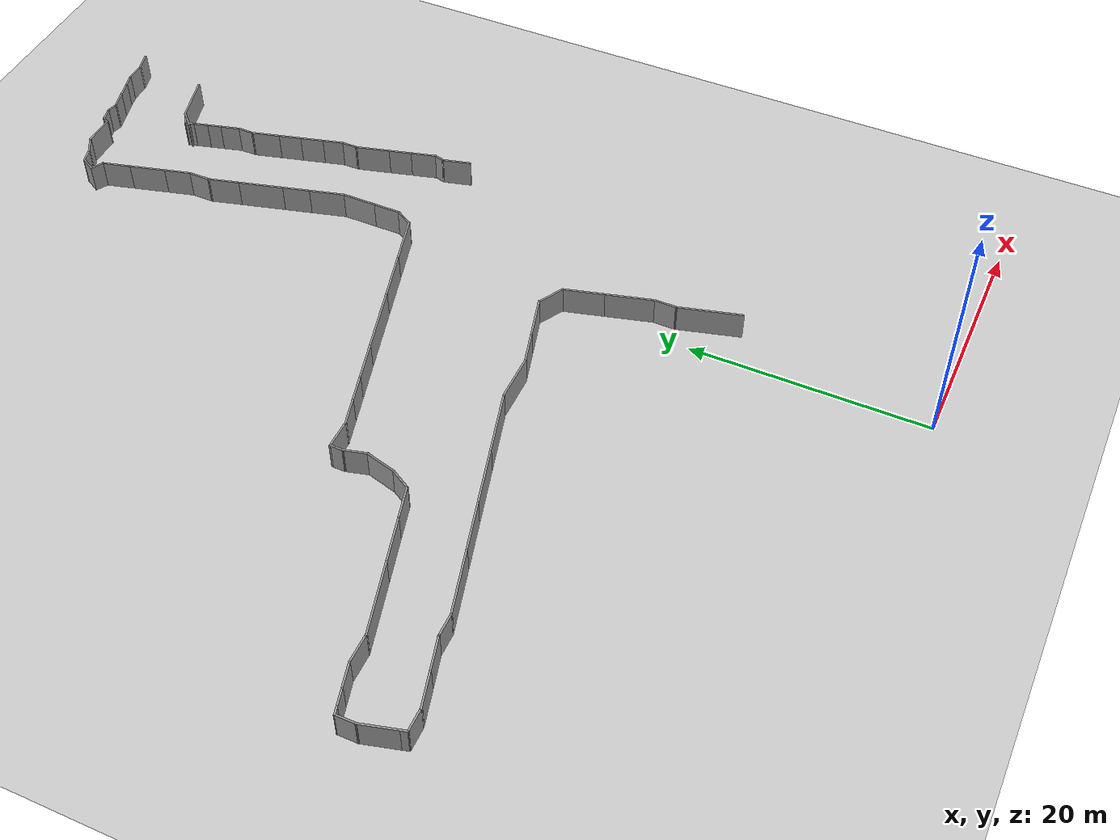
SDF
<sdf version="1.7">
 <world name="default">
  <model name="ground_plane">
   <static>1</static>
   <link name="link">
    <collision name="collision">
     <geometry><plane><normal>0 0 1</normal><size>500 500</size></plane></geometry>
     <surface><friction><ode><mu>100</mu><mu2>50</mu2></ode></friction></surface>
    </collision>
    <visual name="visual">
     <cast_shadows>0</cast_shadows>
     <geometry><plane><normal>0 0 1</normal><size>500 500</size></plane></geometry>
     <material>
      <script><uri>file://media/materials/scripts/gazebo.material</uri><name>Gazebo/Grey</name></script>
     </material>
    </visual>
   </link>
  </model>
  <model name="out_door1">
   <pose>25.5832 12.3476 0 0 -0 0</pose>
   <link name="Wall_201">
    <collision name="Wall_201_Collision">
     <geometry><box><size>1.75 0.15 2.5</size></box></geometry>
     <pose>0 0 1.25 0 -0 0</pose>
    </collision>
    <visual name="Wall_201_Visual">
     <pose>0 0 1.25 0 -0 0</pose>
     <geometry><box><size>1.75 0.15 2.5</size></box></geometry>
     <material>
      <script><uri>file://media/materials/scripts/gazebo.material</uri><name>Gazebo/Grey</name></script>
      <ambient>1 1 1 1</ambient>
     </material>
     <meta><layer>0</layer></meta>
    </visual>
    <pose>-15.1569 65.5333 0 0 -0 -2.87979</pose>
   </link>
   <link name="Wall_202">
    <collision name="Wall_202_Collision">
     <geometry><box><size>1.75 0.15 2.5</size></box></geometry>
     <pose>0 0 1.25 0 -0 0</pose>
    </collision>
    <visual name="Wall_202_Visual">
     <pose>0 0 1.25 0 -0 0</pose>
     <geometry><box><size>1.75 0.15 2.5</size></box></geometry>
     <material>
      <script><uri>file://media/materials/scripts/gazebo.material</uri><name>Gazebo/Grey</name></script>
      <ambient>1 1 1 1</ambient>
     </material>
     <meta><layer>0</layer></meta>
    </visual>
    <pose>-16.7296 65.3262 0 0 -0 3.14159</pose>
   </link>
   <link name="Wall_203">
    <collision name="Wall_203_Collision">
     <geometry><box><size>1.25 0.15 2.5</size></box></geometry>
     <pose>0 0 1.25 0 -0 0</pose>
    </collision>
    <visual name="Wall_203_Visual">
     <pose>0 0 1.25 0 -0 0</pose>
     <geometry><box><size>1.25 0.15 2.5</size></box></geometry>
     <material>
      <script><uri>file://media/materials/scripts/gazebo.material</uri><name>Gazebo/Grey</name></script>
      <ambient>1 1 1 1</ambient>
     </material>
     <meta><layer>0</layer></meta>
    </visual>
    <pose>-18.0609 65.1839 0 0 -0 -2.87979</pose>
   </link>
   <link name="Wall_204">
    <collision name="Wall_204_Collision">
     <geometry><box><size>1.5 0.15 2.5</size></box></geometry>
     <pose>0 0 1.25 0 -0 0</pose>
    </collision>
    <visual name="Wall_204_Visual">
     <pose>0 0 1.25 0 -0 0</pose>
     <geometry><box><size>1.5 0.15 2.5</size></box></geometry>
     <material>
      <script><uri>file://media/materials/scripts/gazebo.material</uri><name>Gazebo/Grey</name></script>
      <ambient>1 1 1 1</ambient>
     </material>
     <meta><layer>0</layer></meta>
    </visual>
    <pose>-19.2441 64.8668 0 0 -0 -2.87979</pose>
   </link>
   <link name="Wall_205">
    <collision name="Wall_205_Collision">
     <geometry><box><size>1.75 0.15 2.5</size></box></geometry>
     <pose>0 0 1.25 0 -0 0</pose>
    </collision>
    <visual name="Wall_205_Visual">
     <pose>0 0 1.25 0 -0 0</pose>
     <geometry><box><size>1.75 0.15 2.5</size></box></geometry>
     <material>
      <script><uri>file://media/materials/scripts/gazebo.material</uri><name>Gazebo/Grey</name></script>
      <ambient>1 1 1 1</ambient>
     </material>
     <meta><layer>0</layer></meta>
    </visual>
    <pose>-20.6689 64.4851 0 0 -0 -2.87979</pose>
   </link>
   <link name="Wall_206">
    <collision name="Wall_206_Collision">
     <geometry><box><size>1 0.15 2.5</size></box></geometry>
     <pose>0 0 1.25 0 -0 0</pose>
    </collision>
    <visual name="Wall_206_Visual">
     <pose>0 0 1.25 0 -0 0</pose>
     <geometry><box><size>1 0.15 2.5</size></box></geometry>
     <material>
      <script><uri>file://media/materials/scripts/gazebo.material</uri><name>Gazebo/Grey</name></script>
      <ambient>1 1 1 1</ambient>
     </material>
     <meta><layer>0</layer></meta>
    </visual>
    <pose>-21.8521 64.388 0 0 -0 2.87979</pose>
   </link>
   <link name="Wall_207">
    <collision name="Wall_207_Collision">
     <geometry><box><size>1.25 0.15 2.5</size></box></geometry>
     <pose>0 0 1.25 0 -0 0</pose>
    </collision>
    <visual name="Wall_207_Visual">
     <pose>0 0 1.25 0 -0 0</pose>
     <geometry><box><size>1.25 0.15 2.5</size></box></geometry>
     <material>
      <script><uri>file://media/materials/scripts/gazebo.material</uri><name>Gazebo/Grey</name></script>
      <ambient>1 1 1 1</ambient>
     </material>
     <meta><layer>0</layer></meta>
    </visual>
    <pose>-22.7939 64.3556 0 0 -0 -2.87979</pose>
   </link>
   <link name="Wall_208">
    <collision name="Wall_208_Collision">
     <geometry><box><size>0.75 0.15 2.5</size></box></geometry>
     <pose>0 0 1.25 0 -0 0</pose>
    </collision>
    <visual name="Wall_208_Visual">
     <pose>0 0 1.25 0 -0 0</pose>
     <geometry><box><size>0.75 0.15 2.5</size></box></geometry>
     <material>
      <script><uri>file://media/materials/scripts/gazebo.material</uri><name>Gazebo/Grey</name></script>
      <ambient>1 1 1 1</ambient>
     </material>
     <meta><layer>0</layer></meta>
    </visual>
    <pose>-23.4752 63.9535 0 0 -0 -2.0944</pose>
   </link>
   <link name="Wall_209">
    <collision name="Wall_209_Collision">
     <geometry><box><size>2.75 0.15 2.5</size></box></geometry>
     <pose>0 0 1.25 0 -0 0</pose>
    </collision>
    <visual name="Wall_209_Visual">
     <pose>0 0 1.25 0 -0 0</pose>
     <geometry><box><size>2.75 0.15 2.5</size></box></geometry>
     <material>
      <script><uri>file://media/materials/scripts/gazebo.material</uri><name>Gazebo/Grey</name></script>
      <ambient>1 1 1 1</ambient>
     </material>
     <meta><layer>0</layer></meta>
    </visual>
    <pose>-24.9252 63.6937 0 0 -0 3.14159</pose>
   </link>
   <link name="Wall_210">
    <collision name="Wall_210_Collision">
     <geometry><box><size>1.75 0.15 2.5</size></box></geometry>
     <pose>0 0 1.25 0 -0 0</pose>
    </collision>
    <visual name="Wall_210_Visual">
     <pose>0 0 1.25 0 -0 0</pose>
     <geometry><box><size>1.75 0.15 2.5</size></box></geometry>
     <material>
      <script><uri>file://media/materials/scripts/gazebo.material</uri><name>Gazebo/Grey</name></script>
      <ambient>1 1 1 1</ambient>
     </material>
     <meta><layer>0</layer></meta>
    </visual>
    <pose>-26.918 63.2937 0 0 -0 -2.61799</pose>
   </link>
   <link name="Wall_211">
    <collision name="Wall_211_Collision">
     <geometry><box><size>1.25 0.15 2.5</size></box></geometry>
     <pose>0 0 1.25 0 -0 0</pose>
    </collision>
    <visual name="Wall_211_Visual">
     <pose>0 0 1.25 0 -0 0</pose>
     <geometry><box><size>1.25 0.15 2.5</size></box></geometry>
     <material>
      <script><uri>file://media/materials/scripts/gazebo.material</uri><name>Gazebo/Grey</name></script>
      <ambient>1 1 1 1</ambient>
     </material>
     <meta><layer>0</layer></meta>
    </visual>
    <pose>-28.1421 62.7513 0 0 -0 -2.87979</pose>
   </link>
   <link name="Wall_212">
    <collision name="Wall_212_Collision">
     <geometry><box><size>1.5 0.15 2.5</size></box></geometry>
     <pose>0 0 1.25 0 -0 0</pose>
    </collision>
    <visual name="Wall_212_Visual">
     <pose>0 0 1.25 0 -0 0</pose>
     <geometry><box><size>1.5 0.15 2.5</size></box></geometry>
     <material>
      <script><uri>file://media/materials/scripts/gazebo.material</uri><name>Gazebo/Grey</name></script>
      <ambient>1 1 1 1</ambient>
     </material>
     <meta><layer>0</layer></meta>
    </visual>
    <pose>-29.0108 62.0244 0 0 -0 -2.0944</pose>
   </link>
   <link name="Wall_213">
    <collision name="Wall_213_Collision">
     <geometry><box><size>1.25 0.15 2.5</size></box></geometry>
     <pose>0 0 1.25 0 -0 0</pose>
    </collision>
    <visual name="Wall_213_Visual">
     <pose>0 0 1.25 0 -0 0</pose>
     <geometry><box><size>1.25 0.15 2.5</size></box></geometry>
     <material>
      <script><uri>file://media/materials/scripts/gazebo.material</uri><name>Gazebo/Grey</name></script>
      <ambient>1 1 1 1</ambient>
     </material>
     <meta><layer>0</layer></meta>
    </visual>
    <pose>-28.872 61.1648 0 0 -0 -0.523599</pose>
   </link>
   <link name="Wall_215">
    <collision name="Wall_215_Collision">
     <geometry><box><size>2.5 0.15 2.5</size></box></geometry>
     <pose>0 0 1.25 0 -0 0</pose>
    </collision>
    <visual name="Wall_215_Visual">
     <pose>0 0 1.25 0 -0 0</pose>
     <geometry><box><size>2.5 0.15 2.5</size></box></geometry>
     <material>
      <script><uri>file://media/materials/scripts/gazebo.material</uri><name>Gazebo/Grey</name></script>
      <ambient>1 1 1 1</ambient>
     </material>
     <meta><layer>0</layer></meta>
    </visual>
    <pose>-28.0916 59.7549 0 0 -0 -1.309</pose>
   </link>
   <link name="Wall_216">
    <collision name="Wall_216_Collision">
     <geometry><box><size>3.25 0.15 2.5</size></box></geometry>
     <pose>0 0 1.25 0 -0 0</pose>
    </collision>
    <visual name="Wall_216_Visual">
     <pose>0 0 1.25 0 -0 0</pose>
     <geometry><box><size>3.25 0.15 2.5</size></box></geometry>
     <material>
      <script><uri>file://media/materials/scripts/gazebo.material</uri><name>Gazebo/Grey</name></script>
      <ambient>1 1 1 1</ambient>
     </material>
     <meta><layer>0</layer></meta>
    </visual>
    <pose>-27.3863 57.1227 0 0 -0 -1.309</pose>
   </link>
   <link name="Wall_217">
    <collision name="Wall_217_Collision">
     <geometry><box><size>2.5 0.15 2.5</size></box></geometry>
     <pose>0 0 1.25 0 -0 0</pose>
    </collision>
    <visual name="Wall_217_Visual">
     <pose>0 0 1.25 0 -0 0</pose>
     <geometry><box><size>2.5 0.15 2.5</size></box></geometry>
     <material>
      <script><uri>file://media/materials/scripts/gazebo.material</uri><name>Gazebo/Grey</name></script>
      <ambient>1 1 1 1</ambient>
     </material>
     <meta><layer>0</layer></meta>
    </visual>
    <pose>-26.681 54.4906 0 0 -0 -1.309</pose>
   </link>
   <link name="Wall_218">
    <collision name="Wall_218_Collision">
     <geometry><box><size>2 0.15 2.5</size></box></geometry>
     <pose>0 0 1.25 0 -0 0</pose>
    </collision>
    <visual name="Wall_218_Visual">
     <pose>0 0 1.25 0 -0 0</pose>
     <geometry><box><size>2 0.15 2.5</size></box></geometry>
     <material>
      <script><uri>file://media/materials/scripts/gazebo.material</uri><name>Gazebo/Grey</name></script>
      <ambient>1 1 1 1</ambient>
     </material>
     <meta><layer>0</layer></meta>
    </visual>
    <pose>-26.3769 52.4306 0 0 -0 -1.5708</pose>
   </link>
   <link name="Wall_219">
    <collision name="Wall_219_Collision">
     <geometry><box><size>2.75 0.15 2.5</size></box></geometry>
     <pose>0 0 1.25 0 -0 0</pose>
    </collision>
    <visual name="Wall_219_Visual">
     <pose>0 0 1.25 0 -0 0</pose>
     <geometry><box><size>2.75 0.15 2.5</size></box></geometry>
     <material>
      <script><uri>file://media/materials/scripts/gazebo.material</uri><name>Gazebo/Grey</name></script>
      <ambient>1 1 1 1</ambient>
     </material>
     <meta><layer>0</layer></meta>
    </visual>
    <pose>-26.0405 50.2499 0 0 -0 -1.309</pose>
   </link>
   <link name="Wall_220">
    <collision name="Wall_220_Collision">
     <geometry><box><size>4 0.15 2.5</size></box></geometry>
     <pose>0 0 1.25 0 -0 0</pose>
    </collision>
    <visual name="Wall_220_Visual">
     <pose>0 0 1.25 0 -0 0</pose>
     <geometry><box><size>4 0.15 2.5</size></box></geometry>
     <material>
      <script><uri>file://media/materials/scripts/gazebo.material</uri><name>Gazebo/Grey</name></script>
      <ambient>1 1 1 1</ambient>
     </material>
     <meta><layer>0</layer></meta>
    </visual>
    <pose>-25.2058 47.1348 0 0 -0 -1.309</pose>
   </link>
   <link name="Wall_222">
    <collision name="Wall_222_Collision">
     <geometry><box><size>2.5 0.15 2.5</size></box></geometry>
     <pose>0 0 1.25 0 -0 0</pose>
    </collision>
    <visual name="Wall_222_Visual">
     <pose>0 0 1.25 0 -0 0</pose>
     <geometry><box><size>2.5 0.15 2.5</size></box></geometry>
     <material>
      <script><uri>file://media/materials/scripts/gazebo.material</uri><name>Gazebo/Grey</name></script>
      <ambient>1 1 1 1</ambient>
     </material>
     <meta><layer>0</layer></meta>
    </visual>
    <pose>-24.4034 44.1404 0 0 -0 -1.309</pose>
   </link>
   <link name="Wall_223">
    <collision name="Wall_223_Collision">
     <geometry><box><size>3.25 0.15 2.5</size></box></geometry>
     <pose>0 0 1.25 0 -0 0</pose>
    </collision>
    <visual name="Wall_223_Visual">
     <pose>0 0 1.25 0 -0 0</pose>
     <geometry><box><size>3.25 0.15 2.5</size></box></geometry>
     <material>
      <script><uri>file://media/materials/scripts/gazebo.material</uri><name>Gazebo/Grey</name></script>
      <ambient>1 1 1 1</ambient>
     </material>
     <meta><layer>0</layer></meta>
    </visual>
    <pose>-23.6981 41.5083 0 0 -0 -1.309</pose>
   </link>
   <link name="Wall_224">
    <collision name="Wall_224_Collision">
     <geometry><box><size>3 0.15 2.5</size></box></geometry>
     <pose>0 0 1.25 0 -0 0</pose>
    </collision>
    <visual name="Wall_224_Visual">
     <pose>0 0 1.25 0 -0 0</pose>
     <geometry><box><size>3 0.15 2.5</size></box></geometry>
     <material>
      <script><uri>file://media/materials/scripts/gazebo.material</uri><name>Gazebo/Grey</name></script>
      <ambient>1 1 1 1</ambient>
     </material>
     <meta><layer>0</layer></meta>
    </visual>
    <pose>-23.297 38.5861 0 0 -0 -1.5708</pose>
   </link>
   <link name="Wall_225">
    <collision name="Wall_225_Collision">
     <geometry><box><size>2.5 0.15 2.5</size></box></geometry>
     <pose>0 0 1.25 0 -0 0</pose>
    </collision>
    <visual name="Wall_225_Visual">
     <pose>0 0 1.25 0 -0 0</pose>
     <geometry><box><size>2.5 0.15 2.5</size></box></geometry>
     <material>
      <script><uri>file://media/materials/scripts/gazebo.material</uri><name>Gazebo/Grey</name></script>
      <ambient>1 1 1 1</ambient>
     </material>
     <meta><layer>0</layer></meta>
    </visual>
    <pose>-23.297 35.9861 0 0 -0 -1.5708</pose>
   </link>
   <link name="Wall_226">
    <collision name="Wall_226_Collision">
     <geometry><box><size>1.75 0.15 2.5</size></box></geometry>
     <pose>0 0 1.25 0 -0 0</pose>
    </collision>
    <visual name="Wall_226_Visual">
     <pose>0 0 1.25 0 -0 0</pose>
     <geometry><box><size>1.75 0.15 2.5</size></box></geometry>
     <material>
      <script><uri>file://media/materials/scripts/gazebo.material</uri><name>Gazebo/Grey</name></script>
      <ambient>1 1 1 1</ambient>
     </material>
     <meta><layer>0</layer></meta>
    </visual>
    <pose>-23.697 34.1183 0 0 -0 -2.0944</pose>
   </link>
   <link name="Wall_227">
    <collision name="Wall_227_Collision">
     <geometry><box><size>4.25 0.15 2.5</size></box></geometry>
     <pose>0 0 1.25 0 -0 0</pose>
    </collision>
    <visual name="Wall_227_Visual">
     <pose>0 0 1.25 0 -0 0</pose>
     <geometry><box><size>4.25 0.15 2.5</size></box></geometry>
     <material>
      <script><uri>file://media/materials/scripts/gazebo.material</uri><name>Gazebo/Grey</name></script>
      <ambient>1 1 1 1</ambient>
     </material>
     <meta><layer>0</layer></meta>
    </visual>
    <pose>-26.0771 32.8949 0 0 -0 -2.87979</pose>
   </link>
   <link name="Wall_228">
    <collision name="Wall_228_Collision">
     <geometry><box><size>4.5 0.15 2.5</size></box></geometry>
     <pose>0 0 1.25 0 -0 0</pose>
    </collision>
    <visual name="Wall_228_Visual">
     <pose>0 0 1.25 0 -0 0</pose>
     <geometry><box><size>4.5 0.15 2.5</size></box></geometry>
     <material>
      <script><uri>file://media/materials/scripts/gazebo.material</uri><name>Gazebo/Grey</name></script>
      <ambient>1 1 1 1</ambient>
     </material>
     <meta><layer>0</layer></meta>
    </visual>
    <pose>-30.1582 31.8014 0 0 -0 -2.87979</pose>
   </link>
   <link name="Wall_229">
    <collision name="Wall_229_Collision">
     <geometry><box><size>5.75 0.15 2.5</size></box></geometry>
     <pose>0 0 1.25 0 -0 0</pose>
    </collision>
    <visual name="Wall_229_Visual">
     <pose>0 0 1.25 0 -0 0</pose>
     <geometry><box><size>5.75 0.15 2.5</size></box></geometry>
     <material>
      <script><uri>file://media/materials/scripts/gazebo.material</uri><name>Gazebo/Grey</name></script>
      <ambient>1 1 1 1</ambient>
     </material>
     <meta><layer>0</layer></meta>
    </visual>
    <pose>-34.9636 30.5137 0 0 -0 -2.87979</pose>
   </link>
   <link name="Wall_230">
    <collision name="Wall_230_Collision">
     <geometry><box><size>3.5 0.15 2.5</size></box></geometry>
     <pose>0 0 1.25 0 -0 0</pose>
    </collision>
    <visual name="Wall_230_Visual">
     <pose>0 0 1.25 0 -0 0</pose>
     <geometry><box><size>3.5 0.15 2.5</size></box></geometry>
     <material>
      <script><uri>file://media/materials/scripts/gazebo.material</uri><name>Gazebo/Grey</name></script>
      <ambient>1 1 1 1</ambient>
     </material>
     <meta><layer>0</layer></meta>
    </visual>
    <pose>-39.2862 29.3555 0 0 -0 -2.87979</pose>
   </link>
   <link name="Wall_231">
    <collision name="Wall_231_Collision">
     <geometry><box><size>2.5 0.15 2.5</size></box></geometry>
     <pose>0 0 1.25 0 -0 0</pose>
    </collision>
    <visual name="Wall_231_Visual">
     <pose>0 0 1.25 0 -0 0</pose>
     <geometry><box><size>2.5 0.15 2.5</size></box></geometry>
     <material>
      <script><uri>file://media/materials/scripts/gazebo.material</uri><name>Gazebo/Grey</name></script>
      <ambient>1 1 1 1</ambient>
     </material>
     <meta><layer>0</layer></meta>
    </visual>
    <pose>-42.039 28.6179 0 0 -0 -2.87979</pose>
   </link>
   <link name="Wall_232">
    <collision name="Wall_232_Collision">
     <geometry><box><size>2.5 0.15 2.5</size></box></geometry>
     <pose>0 0 1.25 0 -0 0</pose>
    </collision>
    <visual name="Wall_232_Visual">
     <pose>0 0 1.25 0 -0 0</pose>
     <geometry><box><size>2.5 0.15 2.5</size></box></geometry>
     <material>
      <script><uri>file://media/materials/scripts/gazebo.material</uri><name>Gazebo/Grey</name></script>
      <ambient>1 1 1 1</ambient>
     </material>
     <meta><layer>0</layer></meta>
    </visual>
    <pose>-44.309 28.0097 0 0 -0 -2.87979</pose>
   </link>
   <link name="Wall_233">
    <collision name="Wall_233_Collision">
     <geometry><box><size>2.5 0.15 2.5</size></box></geometry>
     <pose>0 0 1.25 0 -0 0</pose>
    </collision>
    <visual name="Wall_233_Visual">
     <pose>0 0 1.25 0 -0 0</pose>
     <geometry><box><size>2.5 0.15 2.5</size></box></geometry>
     <material>
      <script><uri>file://media/materials/scripts/gazebo.material</uri><name>Gazebo/Grey</name></script>
      <ambient>1 1 1 1</ambient>
     </material>
     <meta><layer>0</layer></meta>
    </visual>
    <pose>-46.6189 27.7056 0 0 -0 3.14159</pose>
   </link>
   <link name="Wall_234">
    <collision name="Wall_234_Collision">
     <geometry><box><size>1.25 0.15 2.5</size></box></geometry>
     <pose>0 0 1.25 0 -0 0</pose>
    </collision>
    <visual name="Wall_234_Visual">
     <pose>0 0 1.25 0 -0 0</pose>
     <geometry><box><size>1.25 0.15 2.5</size></box></geometry>
     <material>
      <script><uri>file://media/materials/scripts/gazebo.material</uri><name>Gazebo/Grey</name></script>
      <ambient>1 1 1 1</ambient>
     </material>
     <meta><layer>0</layer></meta>
    </visual>
    <pose>-47.7939 27.1556 0 0 -0 -1.5708</pose>
   </link>
   <link name="Wall_237">
    <collision name="Wall_237_Collision">
     <geometry><box><size>2 0.15 2.5</size></box></geometry>
     <pose>0 0 1.25 0 -0 0</pose>
    </collision>
    <visual name="Wall_237_Visual">
     <pose>0 0 1.25 0 -0 0</pose>
     <geometry><box><size>2 0.15 2.5</size></box></geometry>
     <material>
      <script><uri>file://media/materials/scripts/gazebo.material</uri><name>Gazebo/Grey</name></script>
      <ambient>1 1 1 1</ambient>
     </material>
     <meta><layer>0</layer></meta>
    </visual>
    <pose>-47.5545 25.7121 0 0 -0 -1.309</pose>
   </link>
   <link name="Wall_238">
    <collision name="Wall_238_Collision">
     <geometry><box><size>2.75 0.15 2.5</size></box></geometry>
     <pose>0 0 1.25 0 -0 0</pose>
    </collision>
    <visual name="Wall_238_Visual">
     <pose>0 0 1.25 0 -0 0</pose>
     <geometry><box><size>2.75 0.15 2.5</size></box></geometry>
     <material>
      <script><uri>file://media/materials/scripts/gazebo.material</uri><name>Gazebo/Grey</name></script>
      <ambient>1 1 1 1</ambient>
     </material>
     <meta><layer>0</layer></meta>
    </visual>
    <pose>-47.6516 23.5629 0 0 -0 -1.8326</pose>
   </link>
   <link name="Wall_239">
    <collision name="Wall_239_Collision">
     <geometry><box><size>2 0.15 2.5</size></box></geometry>
     <pose>0 0 1.25 0 -0 0</pose>
    </collision>
    <visual name="Wall_239_Visual">
     <pose>0 0 1.25 0 -0 0</pose>
     <geometry><box><size>2 0.15 2.5</size></box></geometry>
     <material>
      <script><uri>file://media/materials/scripts/gazebo.material</uri><name>Gazebo/Grey</name></script>
      <ambient>1 1 1 1</ambient>
     </material>
     <meta><layer>0</layer></meta>
    </visual>
    <pose>-48.4505 21.5061 0 0 -0 -2.0944</pose>
   </link>
   <link name="Wall_240">
    <collision name="Wall_240_Collision">
     <geometry><box><size>3 0.15 2.5</size></box></geometry>
     <pose>0 0 1.25 0 -0 0</pose>
    </collision>
    <visual name="Wall_240_Visual">
     <pose>0 0 1.25 0 -0 0</pose>
     <geometry><box><size>3 0.15 2.5</size></box></geometry>
     <material>
      <script><uri>file://media/materials/scripts/gazebo.material</uri><name>Gazebo/Grey</name></script>
      <ambient>1 1 1 1</ambient>
     </material>
     <meta><layer>0</layer></meta>
    </visual>
    <pose>-50.2895 20.3362 0 0 -0 -2.87979</pose>
   </link>
   <link name="Wall_241">
    <collision name="Wall_241_Collision">
     <geometry><box><size>4 0.15 2.5</size></box></geometry>
     <pose>0 0 1.25 0 -0 0</pose>
    </collision>
    <visual name="Wall_241_Visual">
     <pose>0 0 1.25 0 -0 0</pose>
     <geometry><box><size>4 0.15 2.5</size></box></geometry>
     <material>
      <script><uri>file://media/materials/scripts/gazebo.material</uri><name>Gazebo/Grey</name></script>
      <ambient>1 1 1 1</ambient>
     </material>
     <meta><layer>0</layer></meta>
    </visual>
    <pose>-53.5253 19.4692 0 0 -0 -2.87979</pose>
   </link>
   <link name="Wall_242">
    <collision name="Wall_242_Collision">
     <geometry><box><size>6.25 0.15 2.5</size></box></geometry>
     <pose>0 0 1.25 0 -0 0</pose>
    </collision>
    <visual name="Wall_242_Visual">
     <pose>0 0 1.25 0 -0 0</pose>
     <geometry><box><size>6.25 0.15 2.5</size></box></geometry>
     <material>
      <script><uri>file://media/materials/scripts/gazebo.material</uri><name>Gazebo/Grey</name></script>
      <ambient>1 1 1 1</ambient>
     </material>
     <meta><layer>0</layer></meta>
    </visual>
    <pose>-58.3308 18.1816 0 0 -0 -2.87979</pose>
   </link>
   <link name="Wall_243">
    <collision name="Wall_243_Collision">
     <geometry><box><size>2.5 0.15 2.5</size></box></geometry>
     <pose>0 0 1.25 0 -0 0</pose>
    </collision>
    <visual name="Wall_243_Visual">
     <pose>0 0 1.25 0 -0 0</pose>
     <geometry><box><size>2.5 0.15 2.5</size></box></geometry>
     <material>
      <script><uri>file://media/materials/scripts/gazebo.material</uri><name>Gazebo/Grey</name></script>
      <ambient>1 1 1 1</ambient>
     </material>
     <meta><layer>0</layer></meta>
    </visual>
    <pose>-62.4519 17.3922 0 0 -0 3.14159</pose>
   </link>
   <link name="Wall_244">
    <collision name="Wall_244_Collision">
     <geometry><box><size>2.25 0.15 2.5</size></box></geometry>
     <pose>0 0 1.25 0 -0 0</pose>
    </collision>
    <visual name="Wall_244_Visual">
     <pose>0 0 1.25 0 -0 0</pose>
     <geometry><box><size>2.25 0.15 2.5</size></box></geometry>
     <material>
      <script><uri>file://media/materials/scripts/gazebo.material</uri><name>Gazebo/Grey</name></script>
      <ambient>1 1 1 1</ambient>
     </material>
     <meta><layer>0</layer></meta>
    </visual>
    <pose>-64.6411 17.1204 0 0 -0 -2.87979</pose>
   </link>
   <link name="Wall_245">
    <collision name="Wall_245_Collision">
     <geometry><box><size>1.5 0.15 2.5</size></box></geometry>
     <pose>0 0 1.25 0 -0 0</pose>
    </collision>
    <visual name="Wall_245_Visual">
     <pose>0 0 1.25 0 -0 0</pose>
     <geometry><box><size>1.5 0.15 2.5</size></box></geometry>
     <material>
      <script><uri>file://media/materials/scripts/gazebo.material</uri><name>Gazebo/Grey</name></script>
      <ambient>1 1 1 1</ambient>
     </material>
     <meta><layer>0</layer></meta>
    </visual>
    <pose>-66.3073 16.6739 0 0 -0 -2.87979</pose>
   </link>
   <link name="Wall_246">
    <collision name="Wall_246_Collision">
     <geometry><box><size>0.75 0.15 2.5</size></box></geometry>
     <pose>0 0 1.25 0 -0 0</pose>
    </collision>
    <visual name="Wall_246_Visual">
     <pose>0 0 1.25 0 -0 0</pose>
     <geometry><box><size>0.75 0.15 2.5</size></box></geometry>
     <material>
      <script><uri>file://media/materials/scripts/gazebo.material</uri><name>Gazebo/Grey</name></script>
      <ambient>1 1 1 1</ambient>
     </material>
     <meta><layer>0</layer></meta>
    </visual>
    <pose>-67.2491 16.4216 0 0 -0 -2.87979</pose>
   </link>
   <link name="Wall_247">
    <collision name="Wall_247_Collision">
     <geometry><box><size>1.75 0.15 2.5</size></box></geometry>
     <pose>0 0 1.25 0 -0 0</pose>
    </collision>
    <visual name="Wall_247_Visual">
     <pose>0 0 1.25 0 -0 0</pose>
     <geometry><box><size>1.75 0.15 2.5</size></box></geometry>
     <material>
      <script><uri>file://media/materials/scripts/gazebo.material</uri><name>Gazebo/Grey</name></script>
      <ambient>1 1 1 1</ambient>
     </material>
     <meta><layer>0</layer></meta>
    </visual>
    <pose>-67.5389 15.5439 0 0 -0 -1.5708</pose>
   </link>
   <link name="Wall_248">
    <collision name="Wall_248_Collision">
     <geometry><box><size>3 0.15 2.5</size></box></geometry>
     <pose>0 0 1.25 0 -0 0</pose>
    </collision>
    <visual name="Wall_248_Visual">
     <pose>0 0 1.25 0 -0 0</pose>
     <geometry><box><size>3 0.15 2.5</size></box></geometry>
     <material>
      <script><uri>file://media/materials/scripts/gazebo.material</uri><name>Gazebo/Grey</name></script>
      <ambient>1 1 1 1</ambient>
     </material>
     <meta><layer>0</layer></meta>
    </visual>
    <pose>-67.1701 13.3675 0 0 -0 -1.309</pose>
   </link>
   <link name="Wall_249">
    <collision name="Wall_249_Collision">
     <geometry><box><size>0.75 0.15 2.5</size></box></geometry>
     <pose>0 0 1.25 0 -0 0</pose>
    </collision>
    <visual name="Wall_249_Visual">
     <pose>0 0 1.25 0 -0 0</pose>
     <geometry><box><size>0.75 0.15 2.5</size></box></geometry>
     <material>
      <script><uri>file://media/materials/scripts/gazebo.material</uri><name>Gazebo/Grey</name></script>
      <ambient>1 1 1 1</ambient>
     </material>
     <meta><layer>0</layer></meta>
    </visual>
    <pose>-66.7236 11.7013 0 0 -0 -1.309</pose>
   </link>
   <link name="Wall_250">
    <collision name="Wall_250_Collision">
     <geometry><box><size>2 0.15 2.5</size></box></geometry>
     <pose>0 0 1.25 0 -0 0</pose>
    </collision>
    <visual name="Wall_250_Visual">
     <pose>0 0 1.25 0 -0 0</pose>
     <geometry><box><size>2 0.15 2.5</size></box></geometry>
     <material>
      <script><uri>file://media/materials/scripts/gazebo.material</uri><name>Gazebo/Grey</name></script>
      <ambient>1 1 1 1</ambient>
     </material>
     <meta><layer>0</layer></meta>
    </visual>
    <pose>-65.721 11.4115 0 0 -0 0</pose>
   </link>
   <link name="Wall_251">
    <collision name="Wall_251_Collision">
     <geometry><box><size>3 0.15 2.5</size></box></geometry>
     <pose>0 0 1.25 0 -0 0</pose>
    </collision>
    <visual name="Wall_251_Visual">
     <pose>0 0 1.25 0 -0 0</pose>
     <geometry><box><size>3 0.15 2.5</size></box></geometry>
     <material>
      <script><uri>file://media/materials/scripts/gazebo.material</uri><name>Gazebo/Grey</name></script>
      <ambient>1 1 1 1</ambient>
     </material>
     <meta><layer>0</layer></meta>
    </visual>
    <pose>-63.4195 11.7803 0 0 -0 0.261799</pose>
   </link>
   <link name="Wall_252">
    <collision name="Wall_252_Collision">
     <geometry><box><size>3 0.15 2.5</size></box></geometry>
     <pose>0 0 1.25 0 -0 0</pose>
    </collision>
    <visual name="Wall_252_Visual">
     <pose>0 0 1.25 0 -0 0</pose>
     <geometry><box><size>3 0.15 2.5</size></box></geometry>
     <material>
      <script><uri>file://media/materials/scripts/gazebo.material</uri><name>Gazebo/Grey</name></script>
      <ambient>1 1 1 1</ambient>
     </material>
     <meta><layer>0</layer></meta>
    </visual>
    <pose>-60.6666 12.518 0 0 -0 0.261799</pose>
   </link>
   <link name="Wall_253">
    <collision name="Wall_253_Collision">
     <geometry><box><size>2 0.15 2.5</size></box></geometry>
     <pose>0 0 1.25 0 -0 0</pose>
    </collision>
    <visual name="Wall_253_Visual">
     <pose>0 0 1.25 0 -0 0</pose>
     <geometry><box><size>2 0.15 2.5</size></box></geometry>
     <material>
      <script><uri>file://media/materials/scripts/gazebo.material</uri><name>Gazebo/Grey</name></script>
      <ambient>1 1 1 1</ambient>
     </material>
     <meta><layer>0</layer></meta>
    </visual>
    <pose>-58.3652 12.8868 0 0 -0 0</pose>
   </link>
   <link name="Wall_254">
    <collision name="Wall_254_Collision">
     <geometry><box><size>5.75 0.15 2.5</size></box></geometry>
     <pose>0 0 1.25 0 -0 0</pose>
    </collision>
    <visual name="Wall_254_Visual">
     <pose>0 0 1.25 0 -0 0</pose>
     <geometry><box><size>5.75 0.15 2.5</size></box></geometry>
     <material>
      <script><uri>file://media/materials/scripts/gazebo.material</uri><name>Gazebo/Grey</name></script>
      <ambient>1 1 1 1</ambient>
     </material>
     <meta><layer>0</layer></meta>
    </visual>
    <pose>-54.7356 13.6115 0 0 -0 0.261799</pose>
   </link>
   <link name="Wall_255">
    <collision name="Wall_255_Collision">
     <geometry><box><size>4.25 0.15 2.5</size></box></geometry>
     <pose>0 0 1.25 0 -0 0</pose>
    </collision>
    <visual name="Wall_255_Visual">
     <pose>0 0 1.25 0 -0 0</pose>
     <geometry><box><size>4.25 0.15 2.5</size></box></geometry>
     <material>
      <script><uri>file://media/materials/scripts/gazebo.material</uri><name>Gazebo/Grey</name></script>
      <ambient>1 1 1 1</ambient>
     </material>
     <meta><layer>0</layer></meta>
    </visual>
    <pose>-50.0509 14.8667 0 0 -0 0.261799</pose>
   </link>
   <link name="Wall_256">
    <collision name="Wall_256_Collision">
     <geometry><box><size>5 0.15 2.5</size></box></geometry>
     <pose>0 0 1.25 0 -0 0</pose>
    </collision>
    <visual name="Wall_256_Visual">
     <pose>0 0 1.25 0 -0 0</pose>
     <geometry><box><size>5 0.15 2.5</size></box></geometry>
     <material>
      <script><uri>file://media/materials/scripts/gazebo.material</uri><name>Gazebo/Grey</name></script>
      <ambient>1 1 1 1</ambient>
     </material>
     <meta><layer>0</layer></meta>
    </visual>
    <pose>-45.7283 16.0249 0 0 -0 0.261799</pose>
   </link>
   <link name="Wall_257">
    <collision name="Wall_257_Collision">
     <geometry><box><size>5.75 0.15 2.5</size></box></geometry>
     <pose>0 0 1.25 0 -0 0</pose>
    </collision>
    <visual name="Wall_257_Visual">
     <pose>0 0 1.25 0 -0 0</pose>
     <geometry><box><size>5.75 0.15 2.5</size></box></geometry>
     <material>
      <script><uri>file://media/materials/scripts/gazebo.material</uri><name>Gazebo/Grey</name></script>
      <ambient>1 1 1 1</ambient>
     </material>
     <meta><layer>0</layer></meta>
    </visual>
    <pose>-40.6814 17.3773 0 0 -0 0.261799</pose>
   </link>
   <link name="Wall_258">
    <collision name="Wall_258_Collision">
     <geometry><box><size>4 0.15 2.5</size></box></geometry>
     <pose>0 0 1.25 0 -0 0</pose>
    </collision>
    <visual name="Wall_258_Visual">
     <pose>0 0 1.25 0 -0 0</pose>
     <geometry><box><size>4 0.15 2.5</size></box></geometry>
     <material>
      <script><uri>file://media/materials/scripts/gazebo.material</uri><name>Gazebo/Grey</name></script>
      <ambient>1 1 1 1</ambient>
     </material>
     <meta><layer>0</layer></meta>
    </visual>
    <pose>-36.0518 18.102 0 0 -0 0</pose>
   </link>
   <link name="Wall_259">
    <collision name="Wall_259_Collision">
     <geometry><box><size>3 0.15 2.5</size></box></geometry>
     <pose>0 0 1.25 0 -0 0</pose>
    </collision>
    <visual name="Wall_259_Visual">
     <pose>0 0 1.25 0 -0 0</pose>
     <geometry><box><size>3 0.15 2.5</size></box></geometry>
     <material>
      <script><uri>file://media/materials/scripts/gazebo.material</uri><name>Gazebo/Grey</name></script>
      <ambient>1 1 1 1</ambient>
     </material>
     <meta><layer>0</layer></meta>
    </visual>
    <pose>-32.7503 18.4708 0 0 -0 0.261799</pose>
   </link>
   <link name="Wall_260">
    <collision name="Wall_260_Collision">
     <geometry><box><size>3.75 0.15 2.5</size></box></geometry>
     <pose>0 0 1.25 0 -0 0</pose>
    </collision>
    <visual name="Wall_260_Visual">
     <pose>0 0 1.25 0 -0 0</pose>
     <geometry><box><size>3.75 0.15 2.5</size></box></geometry>
     <material>
      <script><uri>file://media/materials/scripts/gazebo.material</uri><name>Gazebo/Grey</name></script>
      <ambient>1 1 1 1</ambient>
     </material>
     <meta><layer>0</layer></meta>
    </visual>
    <pose>-29.6352 19.3055 0 0 -0 0.261799</pose>
   </link>
   <link name="Wall_261">
    <collision name="Wall_261_Collision">
     <geometry><box><size>2.5 0.15 2.5</size></box></geometry>
     <pose>0 0 1.25 0 -0 0</pose>
    </collision>
    <visual name="Wall_261_Visual">
     <pose>0 0 1.25 0 -0 0</pose>
     <geometry><box><size>2.5 0.15 2.5</size></box></geometry>
     <material>
      <script><uri>file://media/materials/scripts/gazebo.material</uri><name>Gazebo/Grey</name></script>
      <ambient>1 1 1 1</ambient>
     </material>
     <meta><layer>0</layer></meta>
    </visual>
    <pose>-26.879 19.1839 0 0 -0 -0.523599</pose>
   </link>
   <link name="Wall_262">
    <collision name="Wall_262_Collision">
     <geometry><box><size>3.5 0.15 2.5</size></box></geometry>
     <pose>0 0 1.25 0 -0 0</pose>
    </collision>
    <visual name="Wall_262_Visual">
     <pose>0 0 1.25 0 -0 0</pose>
     <geometry><box><size>3.5 0.15 2.5</size></box></geometry>
     <material>
      <script><uri>file://media/materials/scripts/gazebo.material</uri><name>Gazebo/Grey</name></script>
      <ambient>1 1 1 1</ambient>
     </material>
     <meta><layer>0</layer></meta>
    </visual>
    <pose>-25.4279 16.9784 0 0 -0 -1.309</pose>
   </link>
   <link name="Wall_263">
    <collision name="Wall_263_Collision">
     <geometry><box><size>4.25 0.15 2.5</size></box></geometry>
     <pose>0 0 1.25 0 -0 0</pose>
    </collision>
    <visual name="Wall_263_Visual">
     <pose>0 0 1.25 0 -0 0</pose>
     <geometry><box><size>4.25 0.15 2.5</size></box></geometry>
     <material>
      <script><uri>file://media/materials/scripts/gazebo.material</uri><name>Gazebo/Grey</name></script>
      <ambient>1 1 1 1</ambient>
     </material>
     <meta><layer>0</layer></meta>
    </visual>
    <pose>-24.4638 13.3804 0 0 -0 -1.309</pose>
   </link>
   <link name="Wall_264">
    <collision name="Wall_264_Collision">
     <geometry><box><size>2 0.15 2.5</size></box></geometry>
     <pose>0 0 1.25 0 -0 0</pose>
    </collision>
    <visual name="Wall_264_Visual">
     <pose>0 0 1.25 0 -0 0</pose>
     <geometry><box><size>2 0.15 2.5</size></box></geometry>
     <material>
      <script><uri>file://media/materials/scripts/gazebo.material</uri><name>Gazebo/Grey</name></script>
      <ambient>1 1 1 1</ambient>
     </material>
     <meta><layer>0</layer></meta>
    </visual>
    <pose>-23.9332 10.4752 0 0 -0 -1.5708</pose>
   </link>
   <link name="Wall_265">
    <collision name="Wall_265_Collision">
     <geometry><box><size>5.5 0.15 2.5</size></box></geometry>
     <pose>0 0 1.25 0 -0 0</pose>
    </collision>
    <visual name="Wall_265_Visual">
     <pose>0 0 1.25 0 -0 0</pose>
     <geometry><box><size>5.5 0.15 2.5</size></box></geometry>
     <material>
      <script><uri>file://media/materials/scripts/gazebo.material</uri><name>Gazebo/Grey</name></script>
      <ambient>1 1 1 1</ambient>
     </material>
     <meta><layer>0</layer></meta>
    </visual>
    <pose>-23.2409 6.96635 0 0 -0 -1.309</pose>
   </link>
   <link name="Wall_280">
    <collision name="Wall_280_Collision">
     <geometry><box><size>1.75 0.15 2.5</size></box></geometry>
     <pose>0 0 1.25 0 -0 0</pose>
    </collision>
    <visual name="Wall_280_Visual">
     <pose>0 0 1.25 0 -0 0</pose>
     <geometry><box><size>1.75 0.15 2.5</size></box></geometry>
     <material>
      <script><uri>file://media/materials/scripts/gazebo.material</uri><name>Gazebo/Grey</name></script>
      <ambient>1 1 1 1</ambient>
     </material>
     <meta><layer>0</layer></meta>
    </visual>
    <pose>-20.3765 57.4533 0 0 -0 0.785398</pose>
   </link>
   <link name="Wall_281">
    <collision name="Wall_281_Collision">
     <geometry><box><size>4.25 0.15 2.5</size></box></geometry>
     <pose>0 0 1.25 0 -0 0</pose>
    </collision>
    <visual name="Wall_281_Visual">
     <pose>0 0 1.25 0 -0 0</pose>
     <geometry><box><size>4.25 0.15 2.5</size></box></geometry>
     <material>
      <script><uri>file://media/materials/scripts/gazebo.material</uri><name>Gazebo/Grey</name></script>
      <ambient>1 1 1 1</ambient>
     </material>
     <meta><layer>0</layer></meta>
    </visual>
    <pose>-17.8307 58.5496 0 0 -0 0.261799</pose>
   </link>
   <link name="Wall_414">
    <collision name="Wall_414_Collision">
     <geometry><box><size>2.5 0.15 2.5</size></box></geometry>
     <pose>0 0 1.25 0 -0 0</pose>
    </collision>
    <visual name="Wall_414_Visual">
     <pose>0 0 1.25 0 -0 0</pose>
     <geometry><box><size>2.5 0.15 2.5</size></box></geometry>
     <material>
      <script><uri>file://media/materials/scripts/gazebo.material</uri><name>Gazebo/Grey</name></script>
      <ambient>1 1 1 1</ambient>
     </material>
     <meta><layer>0</layer></meta>
    </visual>
    <pose>-15.572 33.2334 0 0 -0 1.8326</pose>
   </link>
   <link name="Wall_416">
    <collision name="Wall_416_Collision">
     <geometry><box><size>1 0.15 2.5</size></box></geometry>
     <pose>0 0 1.25 0 -0 0</pose>
    </collision>
    <visual name="Wall_416_Visual">
     <pose>0 0 1.25 0 -0 0</pose>
     <geometry><box><size>1 0.15 2.5</size></box></geometry>
     <material>
      <script><uri>file://media/materials/scripts/gazebo.material</uri><name>Gazebo/Grey</name></script>
      <ambient>1 1 1 1</ambient>
     </material>
     <meta><layer>0</layer></meta>
    </visual>
    <pose>-15.7662 34.7789 0 0 -0 1.309</pose>
   </link>
   <link name="Wall_417">
    <collision name="Wall_417_Collision">
     <geometry><box><size>2.25 0.15 2.5</size></box></geometry>
     <pose>0 0 1.25 0 -0 0</pose>
    </collision>
    <visual name="Wall_417_Visual">
     <pose>0 0 1.25 0 -0 0</pose>
     <geometry><box><size>2.25 0.15 2.5</size></box></geometry>
     <material>
      <script><uri>file://media/materials/scripts/gazebo.material</uri><name>Gazebo/Grey</name></script>
      <ambient>1 1 1 1</ambient>
     </material>
     <meta><layer>0</layer></meta>
    </visual>
    <pose>-15.9279 36.2036 0 0 -0 1.8326</pose>
   </link>
   <link name="Wall_418">
    <collision name="Wall_418_Collision">
     <geometry><box><size>2.25 0.15 2.5</size></box></geometry>
     <pose>0 0 1.25 0 -0 0</pose>
    </collision>
    <visual name="Wall_418_Visual">
     <pose>0 0 1.25 0 -0 0</pose>
     <geometry><box><size>2.25 0.15 2.5</size></box></geometry>
     <material>
      <script><uri>file://media/materials/scripts/gazebo.material</uri><name>Gazebo/Grey</name></script>
      <ambient>1 1 1 1</ambient>
     </material>
     <meta><layer>0</layer></meta>
    </visual>
    <pose>-16.4714 38.2321 0 0 -0 1.8326</pose>
   </link>
   <link name="Wall_419">
    <collision name="Wall_419_Collision">
     <geometry><box><size>3 0.15 2.5</size></box></geometry>
     <pose>0 0 1.25 0 -0 0</pose>
    </collision>
    <visual name="Wall_419_Visual">
     <pose>0 0 1.25 0 -0 0</pose>
     <geometry><box><size>3 0.15 2.5</size></box></geometry>
     <material>
      <script><uri>file://media/materials/scripts/gazebo.material</uri><name>Gazebo/Grey</name></script>
      <ambient>1 1 1 1</ambient>
     </material>
     <meta><layer>0</layer></meta>
    </visual>
    <pose>-17.112 40.6227 0 0 -0 1.8326</pose>
   </link>
   <link name="Wall_420">
    <collision name="Wall_420_Collision">
     <geometry><box><size>1.5 0.15 2.5</size></box></geometry>
     <pose>0 0 1.25 0 -0 0</pose>
    </collision>
    <visual name="Wall_420_Visual">
     <pose>0 0 1.25 0 -0 0</pose>
     <geometry><box><size>1.5 0.15 2.5</size></box></geometry>
     <material>
      <script><uri>file://media/materials/scripts/gazebo.material</uri><name>Gazebo/Grey</name></script>
      <ambient>1 1 1 1</ambient>
     </material>
     <meta><layer>0</layer></meta>
    </visual>
    <pose>-17.4808 42.6742 0 0 -0 1.5708</pose>
   </link>
   <link name="Wall_421">
    <collision name="Wall_421_Collision">
     <geometry><box><size>2 0.15 2.5</size></box></geometry>
     <pose>0 0 1.25 0 -0 0</pose>
    </collision>
    <visual name="Wall_421_Visual">
     <pose>0 0 1.25 0 -0 0</pose>
     <geometry><box><size>2 0.15 2.5</size></box></geometry>
     <material>
      <script><uri>file://media/materials/scripts/gazebo.material</uri><name>Gazebo/Grey</name></script>
      <ambient>1 1 1 1</ambient>
     </material>
     <meta><layer>0</layer></meta>
    </visual>
    <pose>-17.7202 44.2427 0 0 -0 1.8326</pose>
   </link>
   <link name="Wall_422">
    <collision name="Wall_422_Collision">
     <geometry><box><size>2 0.15 2.5</size></box></geometry>
     <pose>0 0 1.25 0 -0 0</pose>
    </collision>
    <visual name="Wall_422_Visual">
     <pose>0 0 1.25 0 -0 0</pose>
     <geometry><box><size>2 0.15 2.5</size></box></geometry>
     <material>
      <script><uri>file://media/materials/scripts/gazebo.material</uri><name>Gazebo/Grey</name></script>
      <ambient>1 1 1 1</ambient>
     </material>
     <meta><layer>0</layer></meta>
    </visual>
    <pose>-18.1991 46.0296 0 0 -0 1.8326</pose>
   </link>
   <link name="Wall_424">
    <collision name="Wall_424_Collision">
     <geometry><box><size>2.25 0.15 2.5</size></box></geometry>
     <pose>0 0 1.25 0 -0 0</pose>
    </collision>
    <visual name="Wall_424_Visual">
     <pose>0 0 1.25 0 -0 0</pose>
     <geometry><box><size>2.25 0.15 2.5</size></box></geometry>
     <material>
      <script><uri>file://media/materials/scripts/gazebo.material</uri><name>Gazebo/Grey</name></script>
      <ambient>1 1 1 1</ambient>
     </material>
     <meta><layer>0</layer></meta>
    </visual>
    <pose>-18.7102 47.9373 0 0 -0 1.8326</pose>
   </link>
   <link name="Wall_425">
    <collision name="Wall_425_Collision">
     <geometry><box><size>2.5 0.15 2.5</size></box></geometry>
     <pose>0 0 1.25 0 -0 0</pose>
    </collision>
    <visual name="Wall_425_Visual">
     <pose>0 0 1.25 0 -0 0</pose>
     <geometry><box><size>2.5 0.15 2.5</size></box></geometry>
     <material>
      <script><uri>file://media/materials/scripts/gazebo.material</uri><name>Gazebo/Grey</name></script>
      <ambient>1 1 1 1</ambient>
     </material>
     <meta><layer>0</layer></meta>
    </visual>
    <pose>-19.2861 50.0865 0 0 -0 1.8326</pose>
   </link>
   <link name="Wall_426">
    <collision name="Wall_426_Collision">
     <geometry><box><size>1.5 0.15 2.5</size></box></geometry>
     <pose>0 0 1.25 0 -0 0</pose>
    </collision>
    <visual name="Wall_426_Visual">
     <pose>0 0 1.25 0 -0 0</pose>
     <geometry><box><size>1.5 0.15 2.5</size></box></geometry>
     <material>
      <script><uri>file://media/materials/scripts/gazebo.material</uri><name>Gazebo/Grey</name></script>
      <ambient>1 1 1 1</ambient>
     </material>
     <meta><layer>0</layer></meta>
    </visual>
    <pose>-19.5902 51.8965 0 0 -0 1.5708</pose>
   </link>
   <link name="Wall_427">
    <collision name="Wall_427_Collision">
     <geometry><box><size>1.75 0.15 2.5</size></box></geometry>
     <pose>0 0 1.25 0 -0 0</pose>
    </collision>
    <visual name="Wall_427_Visual">
     <pose>0 0 1.25 0 -0 0</pose>
     <geometry><box><size>1.75 0.15 2.5</size></box></geometry>
     <material>
      <script><uri>file://media/materials/scripts/gazebo.material</uri><name>Gazebo/Grey</name></script>
      <ambient>1 1 1 1</ambient>
     </material>
     <meta><layer>0</layer></meta>
    </visual>
    <pose>-19.7973 53.3442 0 0 -0 1.8326</pose>
   </link>
   <link name="Wall_428">
    <collision name="Wall_428_Collision">
     <geometry><box><size>1.5 0.15 2.5</size></box></geometry>
     <pose>0 0 1.25 0 -0 0</pose>
    </collision>
    <visual name="Wall_428_Visual">
     <pose>0 0 1.25 0 -0 0</pose>
     <geometry><box><size>1.5 0.15 2.5</size></box></geometry>
     <material>
      <script><uri>file://media/materials/scripts/gazebo.material</uri><name>Gazebo/Grey</name></script>
      <ambient>1 1 1 1</ambient>
     </material>
     <meta><layer>0</layer></meta>
    </visual>
    <pose>-20.179 54.769 0 0 -0 1.8326</pose>
   </link>
   <link name="Wall_429">
    <collision name="Wall_429_Collision">
     <geometry><box><size>1.25 0.15 2.5</size></box></geometry>
     <pose>0 0 1.25 0 -0 0</pose>
    </collision>
    <visual name="Wall_429_Visual">
     <pose>0 0 1.25 0 -0 0</pose>
     <geometry><box><size>1.25 0.15 2.5</size></box></geometry>
     <material>
      <script><uri>file://media/materials/scripts/gazebo.material</uri><name>Gazebo/Grey</name></script>
      <ambient>1 1 1 1</ambient>
     </material>
     <meta><layer>0</layer></meta>
    </visual>
    <pose>-20.4961 55.9522 0 0 -0 1.8326</pose>
   </link>
   <link name="Wall_430">
    <collision name="Wall_430_Collision">
     <geometry><box><size>1 0.15 2.5</size></box></geometry>
     <pose>0 0 1.25 0 -0 0</pose>
    </collision>
    <visual name="Wall_430_Visual">
     <pose>0 0 1.25 0 -0 0</pose>
     <geometry><box><size>1 0.15 2.5</size></box></geometry>
     <material>
      <script><uri>file://media/materials/scripts/gazebo.material</uri><name>Gazebo/Grey</name></script>
      <ambient>1 1 1 1</ambient>
     </material>
     <meta><layer>0</layer></meta>
    </visual>
    <pose>-20.7484 56.894 0 0 -0 1.8326</pose>
   </link>
   <link name="Wall_431">
    <collision name="Wall_431_Collision">
     <geometry><box><size>0.75 0.15 2.5</size></box></geometry>
     <pose>0 0 1.25 0 -0 0</pose>
    </collision>
    <visual name="Wall_431_Visual">
     <pose>0 0 1.25 0 -0 0</pose>
     <geometry><box><size>0.75 0.15 2.5</size></box></geometry>
     <material>
      <script><uri>file://media/materials/scripts/gazebo.material</uri><name>Gazebo/Grey</name></script>
      <ambient>1 1 1 1</ambient>
     </material>
     <meta><layer>0</layer></meta>
    </visual>
    <pose>-20.5986 57.4545 0 0 -0 0.523599</pose>
   </link>
   <static>1</static>
  </model>
 </world>
</sdf>
